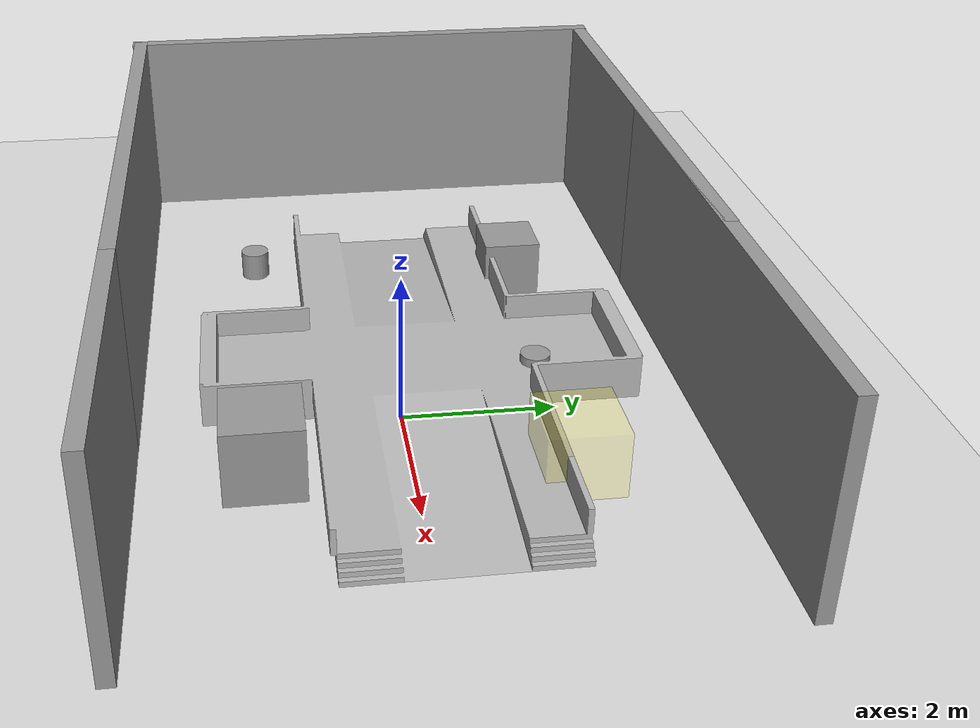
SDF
<sdf version="1.6">
 <world name="default">
  <model name="ground_plane">
   <static>1</static>
   <link name="link">
    <collision name="collision">
     <geometry><plane><normal>0 0 1</normal><size>100 100</size></plane></geometry>
     <surface>
      <contact><collide_bitmask>65535</collide_bitmask></contact>
      <friction><ode><mu>100</mu><mu2>50</mu2></ode></friction>
     </surface>
    </collision>
    <visual name="visual">
     <cast_shadows>0</cast_shadows>
     <geometry><plane><normal>0 0 1</normal><size>100 100</size></plane></geometry>
     <material>
      <script><uri>file://media/materials/scripts/gazebo.material</uri><name>Gazebo/Grey</name></script>
     </material>
    </visual>
   </link>
  </model>
  <model name="environment">
   <static>1</static>
   <link name="base">
    <visual name="visual">
     <geometry>
      <mesh><uri>model://environment/meshes/environment.stl</uri><scale>0.7 0.7 0.7</scale></mesh>
     </geometry>
    </visual>
    <collision name="environment_collision">
     <geometry>
      <mesh><uri>model://environment/meshes/environment.stl</uri><scale>0.7 0.7 0.7</scale></mesh>
     </geometry>
     <surface><friction><ode><mu>1</mu><mu2>1</mu2></ode></friction></surface>
    </collision>
   </link>
   <pose>-4.65918 1.68243 -1.05 1.57 -0 0</pose>
  </model>
  <model name="grey_wall">
   <static>1</static>
   <link name="link">
    <pose>0 0 1.4 0 -0 0</pose>
    <collision name="collision"><geometry><box><size>7.5 0.2 2.8</size></box></geometry></collision>
    <visual name="visual">
     <cast_shadows>0</cast_shadows>
     <geometry><box><size>7.5 0.2 2.8</size></box></geometry>
     <material>
      <script>
       <uri>model://grey_wall/materials/scripts</uri>
       <uri>model://grey_wall/materials/textures</uri>
       <name>vrc/grey_wall</name>
      </script>
     </material>
    </visual>
   </link>
   <pose>-3.41093 -3.39324 0 0 -0 0</pose>
  </model>
  <model name="grey_wall_clone">
   <static>1</static>
   <link name="link">
    <pose>0 0 1.4 0 -0 0</pose>
    <collision name="collision"><geometry><box><size>7.5 0.2 2.8</size></box></geometry></collision>
    <visual name="visual">
     <cast_shadows>0</cast_shadows>
     <geometry><box><size>7.5 0.2 2.8</size></box></geometry>
     <material>
      <script>
       <uri>model://grey_wall/materials/scripts</uri>
       <uri>model://grey_wall/materials/textures</uri>
       <name>vrc/grey_wall</name>
      </script>
     </material>
    </visual>
   </link>
   <pose>0.493325 -3.39484 0 0 -0 0</pose>
  </model>
  <model name="grey_wall_clone_0">
   <static>1</static>
   <link name="link">
    <pose>0 0 1.4 0 -0 0</pose>
    <collision name="collision"><geometry><box><size>7.5 0.2 2.8</size></box></geometry></collision>
    <visual name="visual">
     <cast_shadows>0</cast_shadows>
     <geometry><box><size>7.5 0.2 2.8</size></box></geometry>
     <material>
      <script>
       <uri>model://grey_wall/materials/scripts</uri>
       <uri>model://grey_wall/materials/textures</uri>
       <name>vrc/grey_wall</name>
      </script>
     </material>
    </visual>
   </link>
   <pose>-3.24054 3.85909 0 0 -0 0</pose>
  </model>
  <model name="grey_wall_clone_1">
   <static>1</static>
   <link name="link">
    <pose>0 0 1.4 0 -0 0</pose>
    <collision name="collision"><geometry><box><size>7.5 0.2 2.8</size></box></geometry></collision>
    <visual name="visual">
     <cast_shadows>0</cast_shadows>
     <geometry><box><size>7.5 0.2 2.8</size></box></geometry>
     <material>
      <script>
       <uri>model://grey_wall/materials/scripts</uri>
       <uri>model://grey_wall/materials/textures</uri>
       <name>vrc/grey_wall</name>
      </script>
     </material>
    </visual>
   </link>
   <pose>0.505871 3.84952 0 0 -0 0</pose>
  </model>
  <model name="grey_wall_clone_2_clone_1">
   <static>1</static>
   <link name="link">
    <pose>0 0 1.4 0 -0 0</pose>
    <collision name="collision"><geometry><box><size>7.5 0.2 2.8</size></box></geometry></collision>
    <visual name="visual">
     <cast_shadows>0</cast_shadows>
     <geometry><box><size>7.5 0.2 2.8</size></box></geometry>
     <material>
      <script>
       <uri>model://grey_wall/materials/scripts</uri>
       <uri>model://grey_wall/materials/textures</uri>
       <name>vrc/grey_wall</name>
      </script>
     </material>
    </visual>
   </link>
   <pose>-7.08402 0.228334 0 0 -0 1.57</pose>
  </model>
  <model name="unit_box_0">
   <pose>-3.45411 2.02562 0.4 0 -0 5e-06</pose>
   <link name="link">
    <inertial>
     <mass>1</mass>
     <inertia>
      <ixx>0.166667</ixx>
      <ixy>0</ixy>
      <ixz>0</ixz>
      <iyy>0.166667</iyy>
      <iyz>0</iyz>
      <izz>0.166667</izz>
     </inertia>
    </inertial>
    <collision name="collision"><geometry><box><size>0.8 0.8 0.8</size></box></geometry></collision>
    <visual name="visual">
     <geometry><box><size>0.8 0.8 0.8</size></box></geometry>
     <material>
      <script><name>Gazebo/Grey</name><uri>file://media/materials/scripts/gazebo.material</uri></script>
     </material>
    </visual>
   </link>
  </model>
  <model name="RegionEventBox">
   <static>1</static>
   <pose>1.43786 1.94267 0 0 -0 0</pose>
   <link name="link">
    <visual name="visual">
     <transparency>0.75</transparency>
     <geometry><box><size>1 1 1.75</size></box></geometry>
     <material>
      <script><uri>file://media/materials/scripts/gazebo.material</uri><name>Gazebo/Yellow</name></script>
     </material>
    </visual>
   </link>
   <plugin name="region_event_box" filename="libRegionEventBoxPlugin.so">
    <event><name>model_in_region_event_box</name><type>inclusion</type><active>1</active></event>
   </plugin>
  </model>
  <model name="unit_cylinder">
   <pose>-4.15386 -1.74666 0.2 0 0 -1.1e-05</pose>
   <link name="link">
    <inertial>
     <mass>1</mass>
     <inertia><ixx>0.145833</ixx><ixy>0</ixy><ixz>0</ixz><iyy>0.145833</iyy><iyz>0</iyz><izz>0.125</izz></inertia>
    </inertial>
    <collision name="collision">
     <geometry><cylinder><radius>0.2</radius><length>0.4</length></cylinder></geometry>
    </collision>
    <visual name="visual">
     <geometry><cylinder><radius>0.2</radius><length>0.4</length></cylinder></geometry>
     <material>
      <script><name>Gazebo/Grey</name><uri>file://media/materials/scripts/gazebo.material</uri></script>
     </material>
    </visual>
   </link>
  </model>
  <model name="unit_cylinder_0">
   <pose>-0.706807 1.87968 0.199992 -1e-06 -0 -0.020261</pose>
   <link name="link">
    <inertial>
     <mass>1</mass>
     <inertia><ixx>0.145833</ixx><ixy>0</ixy><ixz>0</ixz><iyy>0.145833</iyy><iyz>0</iyz><izz>0.125</izz></inertia>
    </inertial>
    <collision name="collision">
     <geometry><cylinder><radius>0.2</radius><length>0.4</length></cylinder></geometry>
    </collision>
    <visual name="visual">
     <geometry><cylinder><radius>0.2</radius><length>0.4</length></cylinder></geometry>
     <material>
      <script><name>Gazebo/Grey</name><uri>file://media/materials/scripts/gazebo.material</uri></script>
     </material>
    </visual>
   </link>
  </model>
  <model name="unit_box">
   <pose>1.0812 -1.77209 0.499995 -1e-05 0 0</pose>
   <link name="link">
    <inertial>
     <mass>1</mass>
     <inertia>
      <ixx>0.166667</ixx>
      <ixy>0</ixy>
      <ixz>0</ixz>
      <iyy>0.166667</iyy>
      <iyz>0</iyz>
      <izz>0.166667</izz>
     </inertia>
    </inertial>
    <collision name="collision"><geometry><box><size>1 1 1</size></box></geometry></collision>
    <visual name="visual">
     <geometry><box><size>1 1 1</size></box></geometry>
     <material>
      <script><name>Gazebo/Grey</name><uri>file://media/materials/scripts/gazebo.material</uri></script>
     </material>
    </visual>
   </link>
  </model>
 </world>
</sdf>
